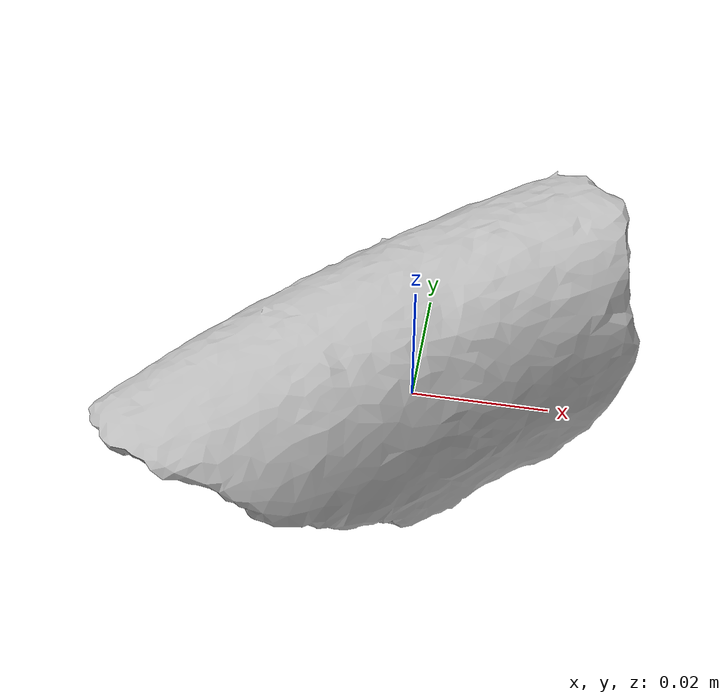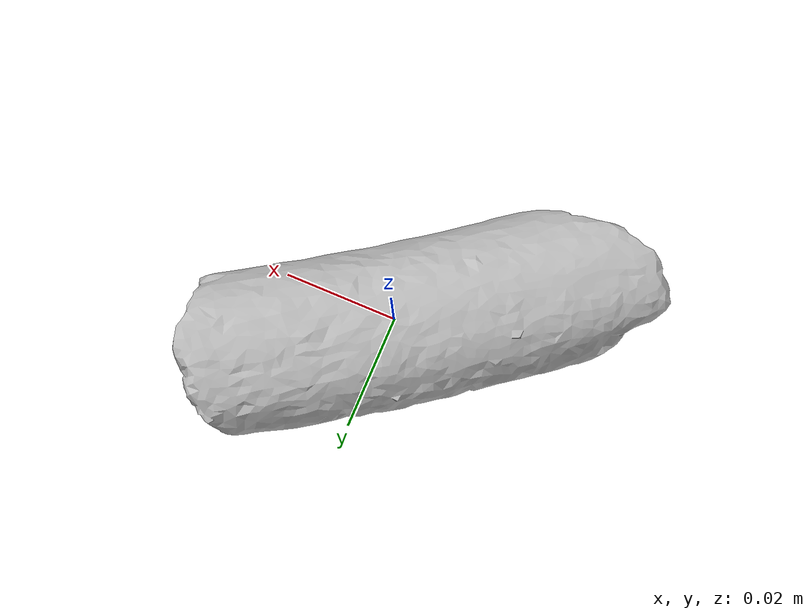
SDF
<?xml version="1.0" ?>
<sdf version="1.5">
  <model name='sherd_c'>

    <pose frame=''>0 0 0 0 0 0</pose>
    <static>false</static> <!-- mass is ignored for static models -->
    <link name='sherd_c_link'>
      <pose frame=''>0 0 0.005 0 0 0</pose>
      <inertial>
        <mass>0.05</mass>
        <inertia>
          <!-- inertials for lengths scaled 2x in x,y,z -->
          <ixx>5.1450100000000006e-06</ixx>
          <ixy>-3.1585640000000004e-06</ixy>
          <ixz>9.0582e-08</ixz>
          <iyy>7.944352e-06</iyy>
          <iyz>-7.702099999999999e-07</iyz>
          <izz>9.123182e-06</izz>
          <!-- inertials for original size: -->
        </inertia>
      </inertial>
      <collision name='collision'> <!-- .dae mesh for collision falls through the blue mat; .stl avoids this -->
        <geometry>
          <mesh>
            <uri>model://sherd_c/meshes/sherd_c.stl</uri>
            <scale>2 2 2</scale>
          </mesh>
        </geometry>
        <surface>
          <contact>
            <poissons_ratio>0.15</poissons_ratio>
            <elastic_modulus>8e+10</elastic_modulus>
            <ode>
              <kp>100000</kp>
              <kd>100</kd>
              <max_vel>100</max_vel>
              <min_depth>0.001</min_depth>
            </ode>
          </contact>
          <friction>
            <torsional>
              <coefficient>1</coefficient>
            </torsional>
            <ode>
              <mu>1.0</mu>
              <mu2>1.0</mu2>
              <fdir1>1 0 0</fdir1> <!-- specify in x dir to prevent slipping on mat AND in gripper. Gazebo automatically picks fdir2 as vector normal to applied force on surface -->
            </ode>
          </friction>
          <bounce/>
        </surface>
        <max_contacts>10</max_contacts>
      </collision>
      <visual name='visual'>
        <geometry>
          <mesh>
            <uri>model://sherd_c/meshes/sherd_c.stl</uri>
            <scale>2 2 2</scale>
          </mesh>
        </geometry>
        <material>
          <script>
            <uri>model://sherd_c/materials/scripts</uri>
            <uri>model://sherd_c/materials/textures</uri>
            <name>sherdMat/c</name>
          </script>
        </material>
      </visual>
      <self_collide>0</self_collide>
      <kinematic>0</kinematic>
      <gravity>1</gravity>
    </link>
  </model>
</sdf>
